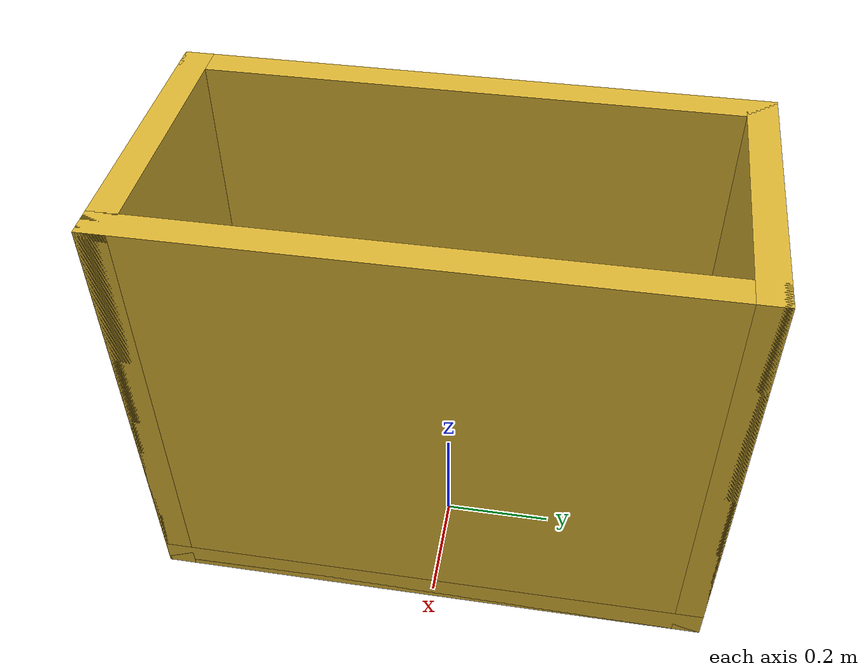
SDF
<?xml version='1.0'?>
<sdf version="1.4">
<model name="dropping box">
  <pose>0 0 0.08 0 0 0</pose>
  <static>true</static>
    <link name="base_face">
        <inertial>
         <mass>0.5</mass>
         <inertia>
            <ixx>0.083</ixx>
            <ixy>0.0</ixy>
            <ixz>0.0</ixz>
            <iyy>0.083</iyy>
            <iyz>0.0</iyz>
            <izz>0.083</izz>
         </inertia>
        </inertial>
        <collision name="collision">
            <geometry>
                <box>
                    <size>0.5 1 0.05</size>
                </box>
            </geometry>
        </collision>
        <visual name="visual">
            <geometry>
                <box>
                    <size>0.5 1 0.05</size>
                </box>
            </geometry>
            <material>
                <script>
                    <uri>file://media/materials/scripts/gazebo.material</uri>
                    <name>Gazebo/Gold</name>
                </script>
            </material>
        </visual>
    </link>

    <link name="front_face">
      <pose>0.225 0 0.375 0 0 0</pose>
      <inertial>
        <mass>0.5</mass>
        <inertia>
          <ixx>0.083</ixx>
          <ixy>0.0</ixy>
          <ixz>0.0</ixz>
          <iyy>0.083</iyy>
          <iyz>0.0</iyz>
          <izz>0.083</izz>
        </inertia>
      </inertial>
      <collision name="collision">
        <geometry>
        <box>
          <size>0.05 1 0.8</size>
        </box>
        </geometry>
      </collision>
      <visual name="visual">
        <geometry>
        <box>
          <size>0.05 1 0.8</size>
        </box>
        </geometry>
        <material>
            <script>
              <uri>file://media/materials/scripts/gazebo.material</uri>
              <name>Gazebo/Gold</name>
            </script>
        </material>
      </visual>
    </link>

    <link name="rear_face">
      <pose>-0.225 0 0.375 0 0 0</pose>
      <inertial>
        <mass>0.5</mass>
        <inertia>
          <ixx>0.083</ixx>
          <ixy>0.0</ixy>
          <ixz>0.0</ixz>
          <iyy>0.083</iyy>
          <iyz>0.0</iyz>
          <izz>0.083</izz>
        </inertia>
      </inertial>
      <collision name="collision">
        <geometry>
        <box>
          <size>0.05 1 0.8</size>
        </box>
        </geometry>
      </collision>
      <visual name="visual">
        <geometry>
        <box>
          <size>0.05 1 0.8</size>
        </box>
        </geometry>
        <material>
            <script>
              <uri>file://media/materials/scripts/gazebo.material</uri>
              <name>Gazebo/Gold</name>
            </script>
        </material>
      </visual>
    </link>

    <link name="right_face">
      <pose>0 0.475 0.375 0 0 0</pose>
      <inertial>
        <mass>0.5</mass>
        <inertia>
          <ixx>0.083</ixx>
          <ixy>0.0</ixy>
          <ixz>0.0</ixz>
          <iyy>0.083</iyy>
          <iyz>0.0</iyz>
          <izz>0.083</izz>
        </inertia>
      </inertial>
      <collision name="collision">
        <geometry>
        <box>
          <size>0.5 0.05 0.8</size>
        </box>
        </geometry>
      </collision>
      <visual name="visual">
        <geometry>
        <box>
          <size>0.5 0.05 0.8</size>
        </box>
        </geometry>
        <material>
            <script>
              <uri>file://media/materials/scripts/gazebo.material</uri>
              <name>Gazebo/Gold</name>
            </script>
        </material>
      </visual>
    </link>

    <link name="left_face">
      <pose>0 -0.475 0.375 0 0 0</pose>
      <inertial>
        <mass>0.5</mass>
        <inertia>
          <ixx>0.083</ixx>
          <ixy>0.0</ixy>
          <ixz>0.0</ixz>
          <iyy>0.083</iyy>
          <iyz>0.0</iyz>
          <izz>0.083</izz>
        </inertia>
      </inertial>
      <collision name="collision">
        <geometry>
        <box>
          <size>0.5 0.05 0.8</size>
        </box>
        </geometry>
      </collision>
      <visual name="visual">
        <geometry>
        <box>
          <size>0.5 0.05 0.8</size>
        </box>
        </geometry>
        <material>
            <script>
              <uri>file://media/materials/scripts/gazebo.material</uri>
              <name>Gazebo/Gold</name>
            </script>
        </material>
      </visual>
    </link>

    <joint name="base_front" type="revolute">
        <child>front_face</child>
        <parent>base_face</parent>
        <pose>1 1 1 0 0 0</pose>
        <axis>
          <xyz>1 1 1</xyz>
        </axis>
    </joint>

    <joint name="base_rear" type="revolute">
        <child>rear_face</child>
        <parent>base_face</parent>
        <pose>1 1 1 0 0 0</pose>
        <axis>
          <xyz>1 1 1</xyz>
        </axis>
    </joint>

    <joint name="base_right" type="revolute">
        <child>right_face</child>
        <parent>base_face</parent>
        <pose>1 1 1 0 0 0</pose>
        <axis>
          <xyz>1 1 1</xyz>
        </axis>
    </joint>

    <joint name="base_left" type="revolute">
        <child>left_face</child>
        <parent>base_face</parent>
        <pose>1 1 1 0 0 0</pose>
        <axis>
          <xyz>1 1 1</xyz>
        </axis>
    </joint>

  </model>
</sdf>
